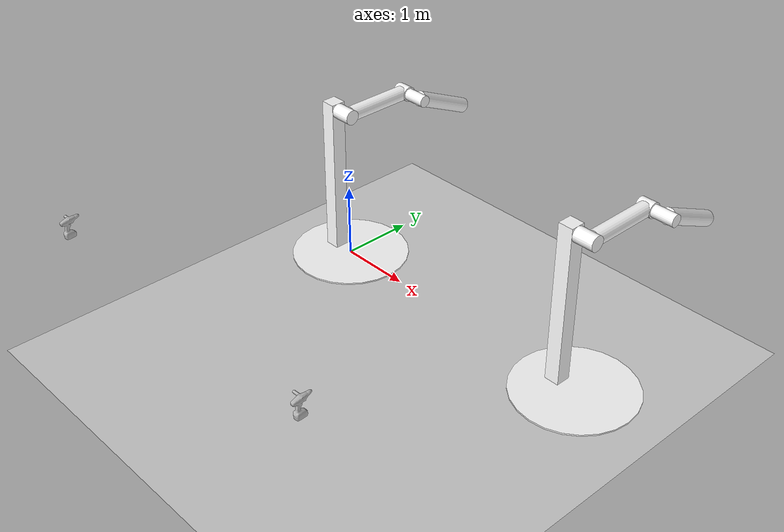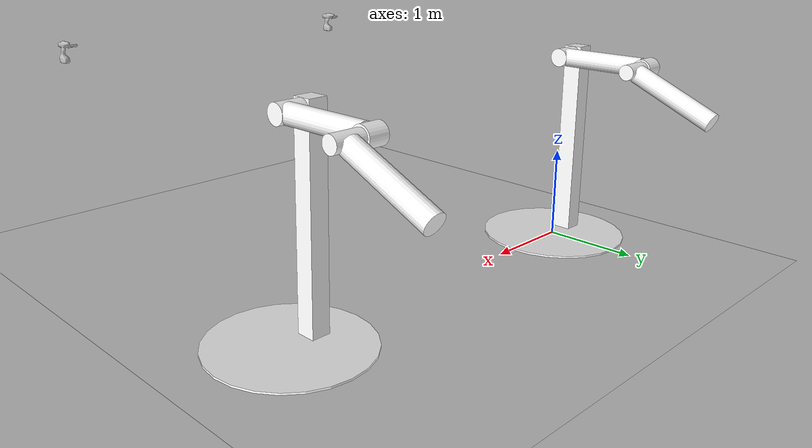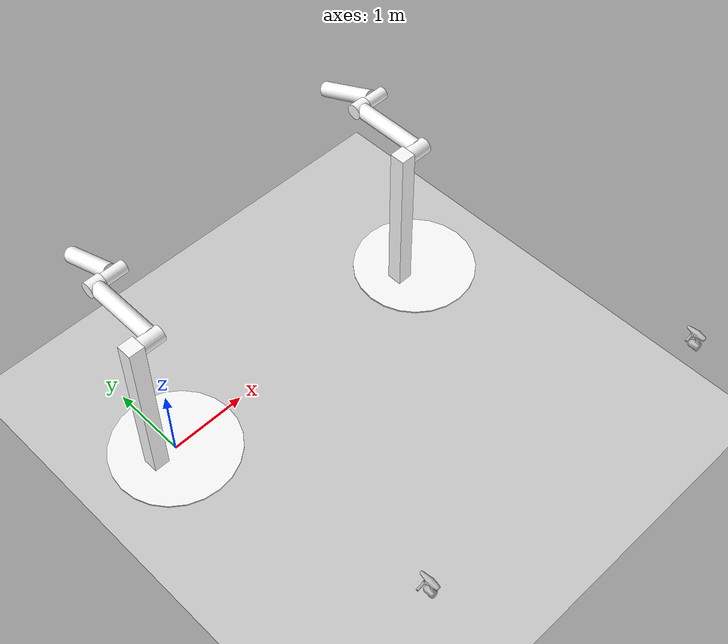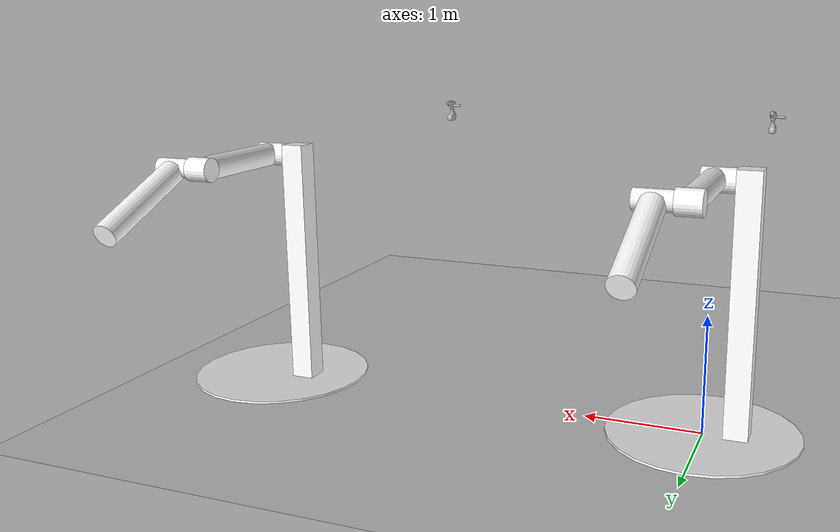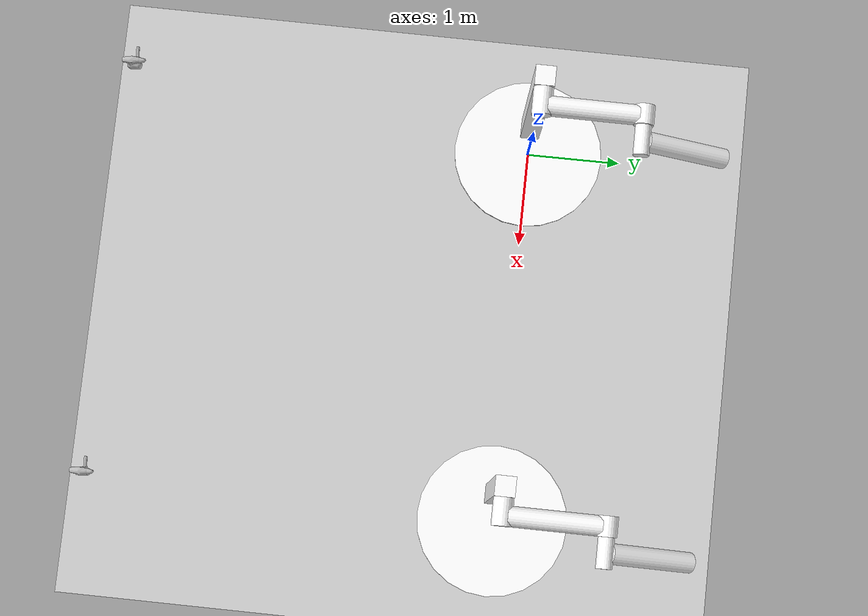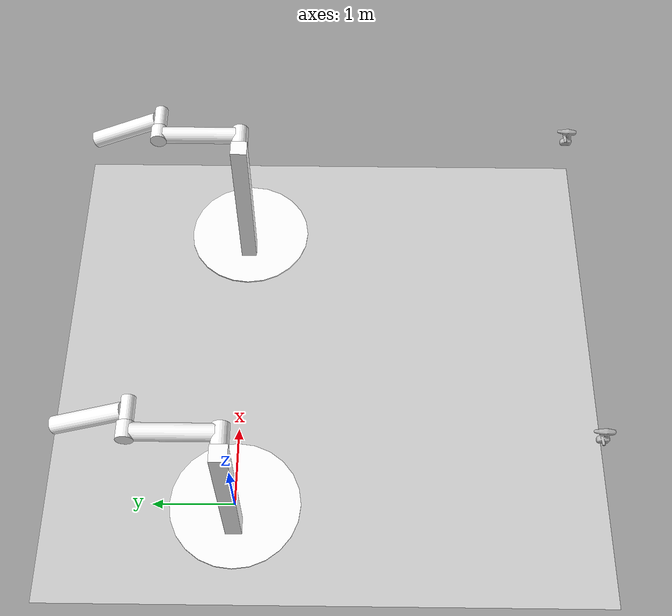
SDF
<sdf version="1.3">
 <world name="default">
  <include><uri>model://sun</uri></include>
  <include><uri>model://ground_plane</uri></include>
  <include>
   <name>active_drill</name>
   <uri>model://cordless_drill</uri>
   <pose>0 -4 2  0 0 0</pose>
   <static>false</static>
  </include>
  <include>
   <name>static_drill</name>
   <uri>model://cordless_drill</uri>
   <pose>4 -4 2  0 0 0</pose>
   <static>true</static>
  </include>
  <include><name>active_pendulum</name><uri>model://double_pendulum_with_base</uri></include>
  <include>
   <name>static_pendulum</name>
   <uri>model://double_pendulum_with_base</uri>
   <pose>4 0 0  0 0 0</pose>
   <static>true</static>
  </include>
 </world>
</sdf>

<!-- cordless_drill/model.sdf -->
<sdf version="1.5">
  <model name="drill">
    <link name="link">
      <inertial>
        <pose>-0.00637 -0.008 0.13254 0 0 0</pose>
        <inertia>
          <ixx>0.01331127</ixx>
          <ixy>-0.00030365</ixy>
          <ixz>-0.00034148</ixz>
          <iyy>0.01157659</iyy>
          <iyz>0.00088073</iyz>
          <izz>0.00378028</izz>
        </inertia>
        <mass>1.50251902</mass>
      </inertial>
      <collision name="collision">
        <pose>0 0 -0.09 0 0 0</pose>
        <geometry>
          <mesh>
            <uri>model://cordless_drill/meshes/cordless_drill.stl</uri>
          </mesh>
        </geometry>
        <surface>
          <contact>
            <ode>
              <max_vel>0.1</max_vel>
              <min_depth>0.001</min_depth>
            </ode>
          </contact>
        </surface>
      </collision>
      <visual name="visual">
        <pose>0 0 -0.09 0 0 0</pose>
        <geometry>
          <mesh>
            <uri>model://cordless_drill/meshes/cordless_drill.dae</uri>
          </mesh>
        </geometry>
      </visual>
    </link>
  </model>
</sdf>

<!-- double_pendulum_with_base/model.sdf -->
<sdf version="1.5">
  <model name="double_pendulum_with_base">
    <link name="base">
      <inertial>
        <mass>100</mass>
      </inertial>
      <visual name="vis_plate_on_ground">
        <pose>0 0 0.01 0 0 0</pose>
        <geometry>
          <cylinder>
            <radius>0.8</radius>
            <length>0.02</length>
          </cylinder>
        </geometry>
        <material><diffuse>1 1 1 1</diffuse><specular>0.1 0.1 0.1 1</specular></material>
      </visual>
      <visual name="vis_pole">
        <pose>-0.275 0 1.1 0 0 0</pose>
        <geometry>
          <box>
            <size>0.2 0.2 2.2</size>
          </box>
        </geometry>
        <material><diffuse>1 1 1 1</diffuse><specular>0.1 0.1 0.1 1</specular></material>
      </visual>
      <collision name="col_plate_on_ground">
        <pose>0 0 0.01 0 0 0</pose>
        <geometry>
          <cylinder>
            <radius>0.8</radius>
            <length>0.02</length>
          </cylinder>
        </geometry>
      </collision>
      <collision name="col_pole">
        <pose>-0.275 0 1.1 0 0 0</pose>
        <geometry>
          <box>
            <size>0.2 0.2 2.2</size>
          </box>
        </geometry>
      </collision>
    </link>
    <!-- upper link, length 1, IC -90 degrees -->
    <link name="upper_link">
      <pose>0 0 2.1 -1.5708 0 0</pose>
      <self_collide>0</self_collide>
      <inertial>
        <pose>0 0 0.5 0 0 0</pose>
      </inertial>
      <visual name="vis_upper_joint">
        <pose>-0.05 0 0 0 1.5708 0</pose>
        <geometry>
          <cylinder>
            <radius>0.1</radius>
            <length>0.3</length>
          </cylinder>
        </geometry>
        <material><diffuse>1 1 1 1</diffuse><specular>0.1 0.1 0.1 1</specular></material>
      </visual>
      <visual name="vis_lower_joint">
        <pose>0 0 1.0 0 1.5708 0</pose>
        <geometry>
          <cylinder>
            <radius>0.1</radius>
            <length>0.2</length>
          </cylinder>
        </geometry>
        <material><diffuse>1 1 1 1</diffuse><specular>0.1 0.1 0.1 1</specular></material>
      </visual>
      <visual name="vis_cylinder">
        <pose>0 0 0.5 0 0 0</pose>
        <geometry>
          <cylinder>
            <radius>0.1</radius>
            <length>0.9</length>
          </cylinder>
        </geometry>
        <material><diffuse>1 1 1 1</diffuse><specular>0.1 0.1 0.1 1</specular></material>
      </visual>
      <collision name="col_upper_joint">
        <pose>-0.05 0 0 0 1.5708 0</pose>
        <geometry>
          <cylinder>
            <radius>0.1</radius>
            <length>0.3</length>
          </cylinder>
        </geometry>
      </collision>
      <collision name="col_lower_joint">
        <pose>0 0 1.0 0 1.5708 0</pose>
        <geometry>
          <cylinder>
            <radius>0.1</radius>
            <length>0.2</length>
          </cylinder>
        </geometry>
      </collision>
      <collision name="col_cylinder">
        <pose>0 0 0.5 0 0 0</pose>
        <geometry>
          <cylinder>
            <radius>0.1</radius>
            <length>0.9</length>
          </cylinder>
        </geometry>
      </collision>
    </link>
    <!-- lower link, length 1, IC ~-120 degrees more -->
    <link name="lower_link">
      <pose>0.25 1.0 2.1 -2 0 0</pose>
      <self_collide>0</self_collide>
      <inertial>
        <pose>0 0 0.5 0 0 0</pose>
      </inertial>
      <visual name="vis_lower_joint">
        <pose>0 0 0 0 1.5708 0</pose>
        <geometry>
          <cylinder>
            <radius>0.08</radius>
            <length>0.3</length>
          </cylinder>
        </geometry>
        <material><diffuse>1 1 1 1</diffuse><specular>0.1 0.1 0.1 1</specular></material>
      </visual>
      <visual name="vis_cylinder">
        <pose>0 0 0.5 0 0 0</pose>
        <geometry>
          <cylinder>
            <radius>0.1</radius>
            <length>0.9</length>
          </cylinder>
        </geometry>
        <material><diffuse>1 1 1 1</diffuse><specular>0.1 0.1 0.1 1</specular></material>
      </visual>
      <collision name="col_lower_joint">
        <pose>0 0 0 0 1.5708 0</pose>
        <geometry>
          <cylinder>
            <radius>0.08</radius>
            <length>0.3</length>
          </cylinder>
        </geometry>
      </collision>
      <collision name="col_cylinder">
        <pose>0 0 0.5 0 0 0</pose>
        <geometry>
          <cylinder>
            <radius>0.1</radius>
            <length>0.9</length>
          </cylinder>
        </geometry>
      </collision>
    </link>
    <!-- pin joint for upper link, at origin of upper link -->
    <joint name="upper_joint" type="revolute">
      <parent>base</parent>
      <child>upper_link</child>
      <axis>
        <xyz>1.0 0 0</xyz>
      </axis>
    </joint>
    <!-- pin joint for lower link, at origin of child link -->
    <joint name="lower_joint" type="revolute">
      <parent>upper_link</parent>
      <child>lower_link</child>
      <axis>
        <xyz>1.0 0 0</xyz>
      </axis>
    </joint>
  </model>
</sdf>
